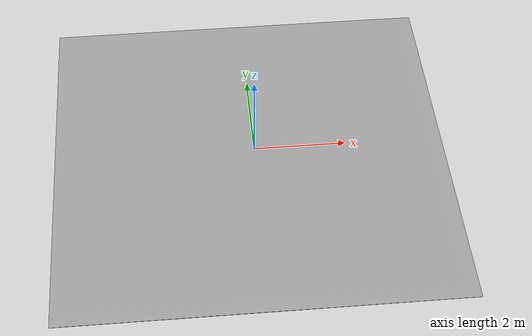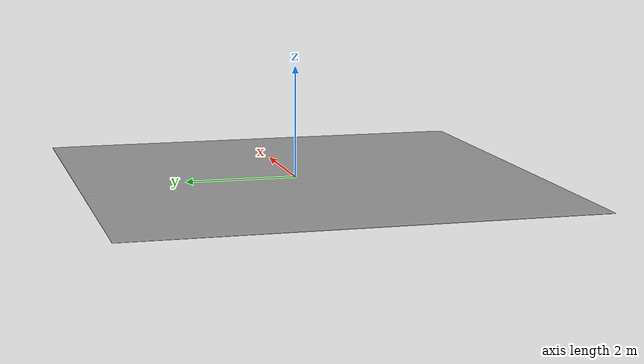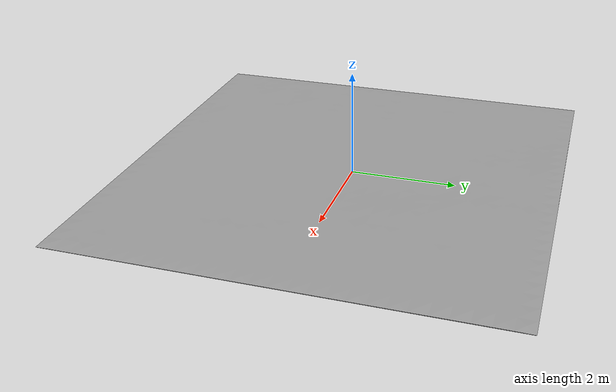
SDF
<?xml version="1.0" ?>
<sdf version="1.5">
  <model name="ground">
    <static>false</static>
    <link name="link">
      <collision name="collision">
        <geometry>
          <mesh>
            <uri>model://ground/meshes/land.stl</uri>
            <scale>0.01 0.01 0.01</scale>
          </mesh>
        </geometry>
        <surface>
          <friction>
            <ode>
              <mu>100</mu>
              <mu2>50</mu2>
            </ode>
          </friction>
        </surface>
      </collision>
      <visual name="visual">
        <cast_shadows>false</cast_shadows>
        <geometry>
          <mesh>
            <uri>model://ground/meshes/land.stl</uri>
            <scale>0.01 0.01 0.01</scale>
          </mesh>
        </geometry>
        <material>
          <script>
            <uri>file://media/materials/scripts/gazebo.material</uri>
            <name>Gazebo/Grey</name>
          </script>
        </material>
      </visual>
    </link>
  </model>
</sdf>
